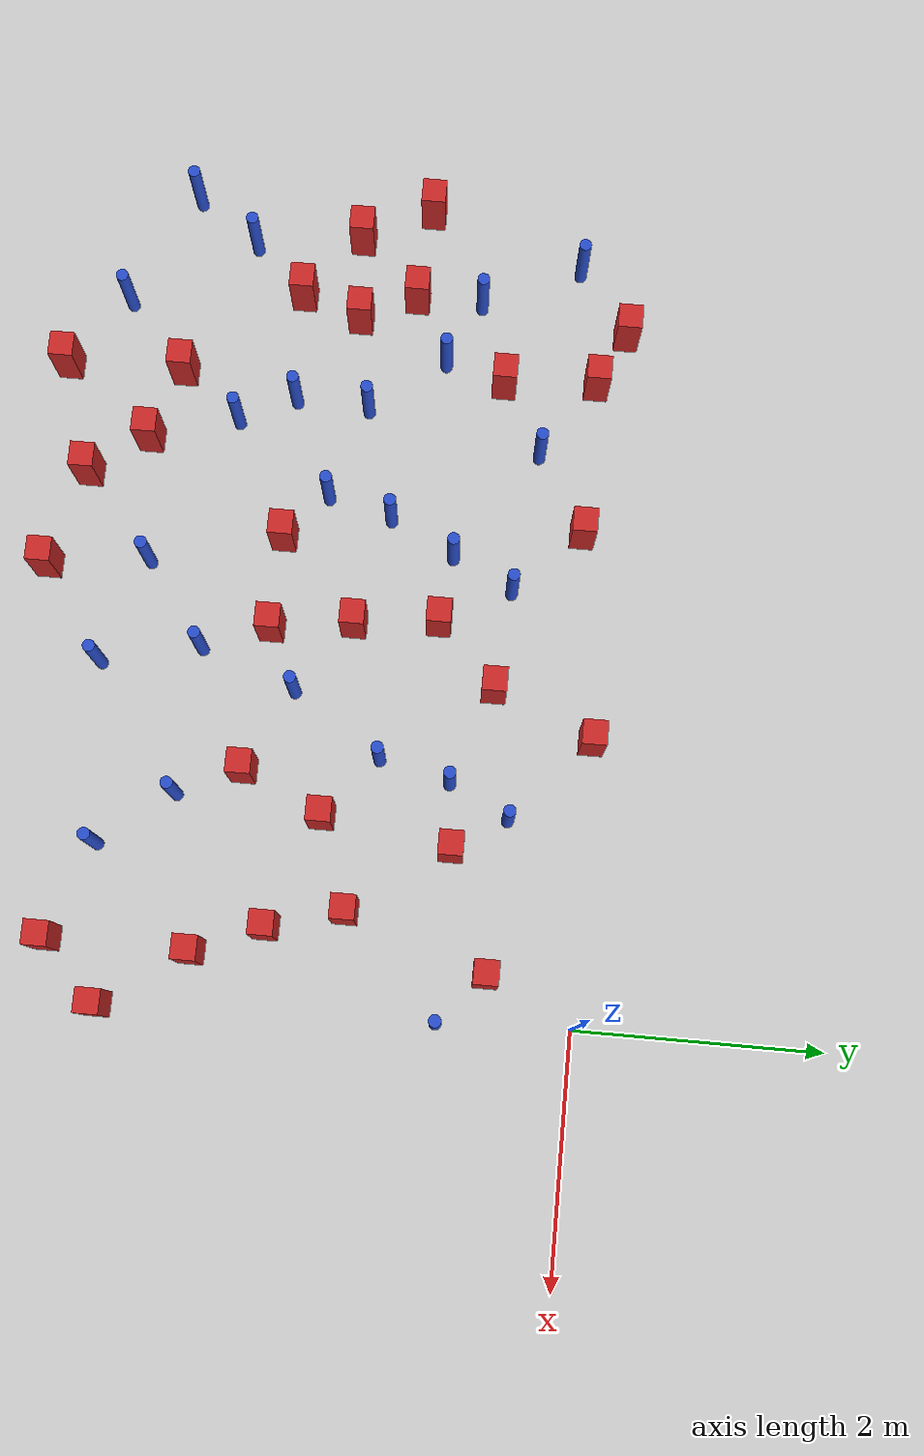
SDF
<sdf version="1.6">
 <world name="default">
  <model name="ground_plane">
   <static>1</static>
   <link name="link">
    <collision name="collision">
     <geometry><plane><normal>0 0 1</normal><size>100 100</size></plane></geometry>
     <surface><friction><ode><mu>100</mu><mu2>50</mu2></ode></friction></surface>
    </collision>
    <visual name="visual">
     <cast_shadows>0</cast_shadows>
     <geometry><plane><normal>0 0 1</normal><size>100 100</size></plane></geometry>
     <material>
      <ambient>1.0 1.0 1.0 1.0</ambient>
      <diffuse>0.8 0.8 0.8 1.0</diffuse>
      <specular>0.01 0.01 0.01 1.000000</specular>
     </material>
    </visual>
   </link>
  </model>
  <model name="NamedLocations">
   <static>true</static>
   <link name="DefaultStart"><pose>8.5 0 0 0 0 3.14</pose></link>
  </model>
  <model name="pole_obstacle14">
   <static>true</static>
   <pose>-1.5881915695 -3.29287273544 7.38925637345e-09 -8.47170692799e-08 1.24976765053e-08 -1.74513093017e-07</pose>
   <link name="link">
    <pose>0 0 0.3 0 -0 0</pose>
    <inertial>
     <mass>1</mass>
     <inertia><ixx>0.145833</ixx><ixy>0</ixy><ixz>0</ixz><iyy>0.145833</iyy><iyz>0</iyz><izz>0.125</izz></inertia>
    </inertial>
    <collision name="collision">
     <geometry><cylinder><radius>0.05</radius><length>.6</length></cylinder></geometry>
    </collision>
    <visual name="visual">
     <geometry><cylinder><radius>0.05</radius><length>.6</length></cylinder></geometry>
     <material>
      <script><name>Gazebo/Blue</name><uri>file://media/materials/scripts/gazebo.material</uri></script>
     </material>
    </visual>
   </link>
  </model>
  <model name="pole_obstacle24">
   <static>true</static>
   <pose>-5.98592956495 -1.19869225586 7.38925637345e-09 -8.471706928e-08 1.24976765134e-08 -1.74513093015e-07</pose>
   <link name="link">
    <pose>0 0 0.3 0 -0 0</pose>
    <inertial>
     <mass>1</mass>
     <inertia><ixx>0.145833</ixx><ixy>0</ixy><ixz>0</ixz><iyy>0.145833</iyy><iyz>0</iyz><izz>0.125</izz></inertia>
    </inertial>
    <collision name="collision">
     <geometry><cylinder><radius>0.05</radius><length>.6</length></cylinder></geometry>
    </collision>
    <visual name="visual">
     <geometry><cylinder><radius>0.05</radius><length>.6</length></cylinder></geometry>
     <material>
      <script><name>Gazebo/Blue</name><uri>file://media/materials/scripts/gazebo.material</uri></script>
     </material>
    </visual>
   </link>
  </model>
  <model name="pole_obstacle32">
   <static>true</static>
   <pose>-3.4949937972 -0.745836086212 7.38925637345e-09 -8.47170692796e-08 1.24976764768e-08 -1.74513093035e-07</pose>
   <link name="link">
    <pose>0 0 0.3 0 -0 0</pose>
    <inertial>
     <mass>1</mass>
     <inertia><ixx>0.145833</ixx><ixy>0</ixy><ixz>0</ixz><iyy>0.145833</iyy><iyz>0</iyz><izz>0.125</izz></inertia>
    </inertial>
    <collision name="collision">
     <geometry><cylinder><radius>0.05</radius><length>.6</length></cylinder></geometry>
    </collision>
    <visual name="visual">
     <geometry><cylinder><radius>0.05</radius><length>.6</length></cylinder></geometry>
     <material>
      <script><name>Gazebo/Blue</name><uri>file://media/materials/scripts/gazebo.material</uri></script>
     </material>
    </visual>
   </link>
  </model>
  <model name="square_post_obstacle32">
   <static>true</static>
   <pose>-0.764394265604 -1.846053875 1.91545236811e-07 -7.35059704564e-06 1.12565212e-07 2.39332434364e-05</pose>
   <link name="link">
    <pose>0 0 0.25 0 -0 0</pose>
    <inertial>
     <mass>100</mass>
     <inertia>
      <ixx>0.166667</ixx>
      <ixy>0</ixy>
      <ixz>0</ixz>
      <iyy>0.166667</iyy>
      <iyz>0</iyz>
      <izz>0.166667</izz>
     </inertia>
    </inertial>
    <collision name="collision"><geometry><box><size>.2 .2 .5</size></box></geometry></collision>
    <visual name="visual">
     <geometry><box><size>.2 .2 .5</size></box></geometry>
     <material>
      <script><name>Gazebo/Red</name><uri>file://media/materials/scripts/gazebo.material</uri></script>
     </material>
    </visual>
   </link>
  </model>
  <model name="pole_obstacle43">
   <static>true</static>
   <pose>-4.97013746226 -2.06566081198 7.38925637345e-09 -8.47170692798e-08 1.24976764937e-08 -1.74513093023e-07</pose>
   <link name="link">
    <pose>0 0 0.3 0 -0 0</pose>
    <inertial>
     <mass>1</mass>
     <inertia><ixx>0.145833</ixx><ixy>0</ixy><ixz>0</ixz><iyy>0.145833</iyy><iyz>0</iyz><izz>0.125</izz></inertia>
    </inertial>
    <collision name="collision">
     <geometry><cylinder><radius>0.05</radius><length>.6</length></cylinder></geometry>
    </collision>
    <visual name="visual">
     <geometry><cylinder><radius>0.05</radius><length>.6</length></cylinder></geometry>
     <material>
      <script><name>Gazebo/Blue</name><uri>file://media/materials/scripts/gazebo.material</uri></script>
     </material>
    </visual>
   </link>
  </model>
  <model name="pole_obstacle47">
   <static>true</static>
   <pose>-5.75767897718 -4.16043996899 7.38925637345e-09 -8.47170692796e-08 1.24976764786e-08 -1.74513093032e-07</pose>
   <link name="link">
    <pose>0 0 0.3 0 -0 0</pose>
    <inertial>
     <mass>1</mass>
     <inertia><ixx>0.145833</ixx><ixy>0</ixy><ixz>0</ixz><iyy>0.145833</iyy><iyz>0</iyz><izz>0.125</izz></inertia>
    </inertial>
    <collision name="collision">
     <geometry><cylinder><radius>0.05</radius><length>.6</length></cylinder></geometry>
    </collision>
    <visual name="visual">
     <geometry><cylinder><radius>0.05</radius><length>.6</length></cylinder></geometry>
     <material>
      <script><name>Gazebo/Blue</name><uri>file://media/materials/scripts/gazebo.material</uri></script>
     </material>
    </visual>
   </link>
  </model>
  <model name="square_post_obstacle37">
   <static>true</static>
   <pose>-6.49922246051 -2.25728765322 1.91545236811e-07 -7.35059704564e-06 1.12565212e-07 2.39332434364e-05</pose>
   <link name="link">
    <pose>0 0 0.25 0 -0 0</pose>
    <inertial>
     <mass>100</mass>
     <inertia>
      <ixx>0.166667</ixx>
      <ixy>0</ixy>
      <ixz>0</ixz>
      <iyy>0.166667</iyy>
      <iyz>0</iyz>
      <izz>0.166667</izz>
     </inertia>
    </inertial>
    <collision name="collision"><geometry><box><size>.2 .2 .5</size></box></geometry></collision>
    <visual name="visual">
     <geometry><box><size>.2 .2 .5</size></box></geometry>
     <material>
      <script><name>Gazebo/Red</name><uri>file://media/materials/scripts/gazebo.material</uri></script>
     </material>
    </visual>
   </link>
  </model>
  <model name="square_post_obstacle40">
   <static>true</static>
   <pose>-0.346351885317 -3.02590306915 1.91545236811e-07 -7.35059704564e-06 1.12565212e-07 2.39332434364e-05</pose>
   <link name="link">
    <pose>0 0 0.25 0 -0 0</pose>
    <inertial>
     <mass>100</mass>
     <inertia>
      <ixx>0.166667</ixx>
      <ixy>0</ixy>
      <ixz>0</ixz>
      <iyy>0.166667</iyy>
      <iyz>0</iyz>
      <izz>0.166667</izz>
     </inertia>
    </inertial>
    <collision name="collision"><geometry><box><size>.2 .2 .5</size></box></geometry></collision>
    <visual name="visual">
     <geometry><box><size>.2 .2 .5</size></box></geometry>
     <material>
      <script><name>Gazebo/Red</name><uri>file://media/materials/scripts/gazebo.material</uri></script>
     </material>
    </visual>
   </link>
  </model>
  <model name="pole_obstacle59">
   <static>true</static>
   <pose>-3.74900423544 -1.24891787536 7.38925637345e-09 -8.471706928e-08 1.24976765152e-08 -1.74513093012e-07</pose>
   <link name="link">
    <pose>0 0 0.3 0 -0 0</pose>
    <inertial>
     <mass>1</mass>
     <inertia><ixx>0.145833</ixx><ixy>0</ixy><ixz>0</ixz><iyy>0.145833</iyy><iyz>0</iyz><izz>0.125</izz></inertia>
    </inertial>
    <collision name="collision">
     <geometry><cylinder><radius>0.05</radius><length>.6</length></cylinder></geometry>
    </collision>
    <visual name="visual">
     <geometry><cylinder><radius>0.05</radius><length>.6</length></cylinder></geometry>
     <material>
      <script><name>Gazebo/Blue</name><uri>file://media/materials/scripts/gazebo.material</uri></script>
     </material>
    </visual>
   </link>
  </model>
  <model name="pole_obstacle67">
   <static>true</static>
   <pose>-2.50916852605 -2.43183906819 7.38925637345e-09 -8.47170692798e-08 1.24976764939e-08 -1.74513093025e-07</pose>
   <link name="link">
    <pose>0 0 0.3 0 -0 0</pose>
    <inertial>
     <mass>1</mass>
     <inertia><ixx>0.145833</ixx><ixy>0</ixy><ixz>0</ixz><iyy>0.145833</iyy><iyz>0</iyz><izz>0.125</izz></inertia>
    </inertial>
    <collision name="collision">
     <geometry><cylinder><radius>0.05</radius><length>.6</length></cylinder></geometry>
    </collision>
    <visual name="visual">
     <geometry><cylinder><radius>0.05</radius><length>.6</length></cylinder></geometry>
     <material>
      <script><name>Gazebo/Blue</name><uri>file://media/materials/scripts/gazebo.material</uri></script>
     </material>
    </visual>
   </link>
  </model>
  <model name="pole_obstacle68">
   <static>true</static>
   <pose>-2.80132080904 -3.22147146962 7.38925637345e-09 -8.47170692798e-08 1.24976764939e-08 -1.74513093025e-07</pose>
   <link name="link">
    <pose>0 0 0.3 0 -0 0</pose>
    <inertial>
     <mass>1</mass>
     <inertia><ixx>0.145833</ixx><ixy>0</ixy><ixz>0</ixz><iyy>0.145833</iyy><iyz>0</iyz><izz>0.125</izz></inertia>
    </inertial>
    <collision name="collision">
     <geometry><cylinder><radius>0.05</radius><length>.6</length></cylinder></geometry>
    </collision>
    <visual name="visual">
     <geometry><cylinder><radius>0.05</radius><length>.6</length></cylinder></geometry>
     <material>
      <script><name>Gazebo/Blue</name><uri>file://media/materials/scripts/gazebo.material</uri></script>
     </material>
    </visual>
   </link>
  </model>
  <model name="pole_obstacle82">
   <static>true</static>
   <pose>-1.13411958968 -3.87998792143 7.38925637345e-09 -8.47170692799e-08 1.24976765053e-08 -1.74513093017e-07</pose>
   <link name="link">
    <pose>0 0 0.3 0 -0 0</pose>
    <inertial>
     <mass>1</mass>
     <inertia><ixx>0.145833</ixx><ixy>0</ixy><ixz>0</ixz><iyy>0.145833</iyy><iyz>0</iyz><izz>0.125</izz></inertia>
    </inertial>
    <collision name="collision">
     <geometry><cylinder><radius>0.05</radius><length>.6</length></cylinder></geometry>
    </collision>
    <visual name="visual">
     <geometry><cylinder><radius>0.05</radius><length>.6</length></cylinder></geometry>
     <material>
      <script><name>Gazebo/Blue</name><uri>file://media/materials/scripts/gazebo.material</uri></script>
     </material>
    </visual>
   </link>
  </model>
  <model name="pole_obstacle85">
   <static>true</static>
   <pose>-1.60331715183 -0.623560210854 7.38925637345e-09 -8.47170692799e-08 1.24976765075e-08 -1.74513093017e-07</pose>
   <link name="link">
    <pose>0 0 0.3 0 -0 0</pose>
    <inertial>
     <mass>1</mass>
     <inertia><ixx>0.145833</ixx><ixy>0</ixy><ixz>0</ixz><iyy>0.145833</iyy><iyz>0</iyz><izz>0.125</izz></inertia>
    </inertial>
    <collision name="collision">
     <geometry><cylinder><radius>0.05</radius><length>.6</length></cylinder></geometry>
    </collision>
    <visual name="visual">
     <geometry><cylinder><radius>0.05</radius><length>.6</length></cylinder></geometry>
     <material>
      <script><name>Gazebo/Blue</name><uri>file://media/materials/scripts/gazebo.material</uri></script>
     </material>
    </visual>
   </link>
  </model>
  <model name="pole_obstacle86">
   <static>true</static>
   <pose>-5.43969992867 -1.45553213279 7.38925637345e-09 -8.471706928e-08 1.24976765134e-08 -1.74513093015e-07</pose>
   <link name="link">
    <pose>0 0 0.3 0 -0 0</pose>
    <inertial>
     <mass>1</mass>
     <inertia><ixx>0.145833</ixx><ixy>0</ixy><ixz>0</ixz><iyy>0.145833</iyy><iyz>0</iyz><izz>0.125</izz></inertia>
    </inertial>
    <collision name="collision">
     <geometry><cylinder><radius>0.05</radius><length>.6</length></cylinder></geometry>
    </collision>
    <visual name="visual">
     <geometry><cylinder><radius>0.05</radius><length>.6</length></cylinder></geometry>
     <material>
      <script><name>Gazebo/Blue</name><uri>file://media/materials/scripts/gazebo.material</uri></script>
     </material>
    </visual>
   </link>
  </model>
  <model name="square_post_obstacle78">
   <static>true</static>
   <pose>-5.35152610486 -0.185492943261 1.91545236811e-07 -7.35059704564e-06 1.12565212e-07 2.39332434364e-05</pose>
   <link name="link">
    <pose>0 0 0.25 0 -0 0</pose>
    <inertial>
     <mass>100</mass>
     <inertia>
      <ixx>0.166667</ixx>
      <ixy>0</ixy>
      <ixz>0</ixz>
      <iyy>0.166667</iyy>
      <iyz>0</iyz>
      <izz>0.166667</izz>
     </inertia>
    </inertial>
    <collision name="collision"><geometry><box><size>.2 .2 .5</size></box></geometry></collision>
    <visual name="visual">
     <geometry><box><size>.2 .2 .5</size></box></geometry>
     <material>
      <script><name>Gazebo/Red</name><uri>file://media/materials/scripts/gazebo.material</uri></script>
     </material>
    </visual>
   </link>
  </model>
  <model name="square_post_obstacle79">
   <static>true</static>
   <pose>-2.3026909301 -0.00418137206174 1.91545236811e-07 -7.35059704564e-06 1.12565212e-07 2.39332434364e-05</pose>
   <link name="link">
    <pose>0 0 0.25 0 -0 0</pose>
    <inertial>
     <mass>100</mass>
     <inertia>
      <ixx>0.166667</ixx>
      <ixy>0</ixy>
      <ixz>0</ixz>
      <iyy>0.166667</iyy>
      <iyz>0</iyz>
      <izz>0.166667</izz>
     </inertia>
    </inertial>
    <collision name="collision"><geometry><box><size>.2 .2 .5</size></box></geometry></collision>
    <visual name="visual">
     <geometry><box><size>.2 .2 .5</size></box></geometry>
     <material>
      <script><name>Gazebo/Red</name><uri>file://media/materials/scripts/gazebo.material</uri></script>
     </material>
    </visual>
   </link>
  </model>
  <model name="square_post_obstacle83">
   <static>true</static>
   <pose>-5.77486883097 -2.20817674534 1.91545236811e-07 -7.35059704564e-06 1.12565212e-07 2.39332434364e-05</pose>
   <link name="link">
    <pose>0 0 0.25 0 -0 0</pose>
    <inertial>
     <mass>100</mass>
     <inertia>
      <ixx>0.166667</ixx>
      <ixy>0</ixy>
      <ixz>0</ixz>
      <iyy>0.166667</iyy>
      <iyz>0</iyz>
      <izz>0.166667</izz>
     </inertia>
    </inertial>
    <collision name="collision"><geometry><box><size>.2 .2 .5</size></box></geometry></collision>
    <visual name="visual">
     <geometry><box><size>.2 .2 .5</size></box></geometry>
     <material>
      <script><name>Gazebo/Red</name><uri>file://media/materials/scripts/gazebo.material</uri></script>
     </material>
    </visual>
   </link>
  </model>
  <model name="pole_obstacle94">
   <static>true</static>
   <pose>-3.50139744922 -3.73138607107 7.38925637345e-09 -8.47170692798e-08 1.24976764939e-08 -1.74513093025e-07</pose>
   <link name="link">
    <pose>0 0 0.3 0 -0 0</pose>
    <inertial>
     <mass>1</mass>
     <inertia><ixx>0.145833</ixx><ixy>0</ixy><ixz>0</ixz><iyy>0.145833</iyy><iyz>0</iyz><izz>0.125</izz></inertia>
    </inertial>
    <collision name="collision">
     <geometry><cylinder><radius>0.05</radius><length>.6</length></cylinder></geometry>
    </collision>
    <visual name="visual">
     <geometry><cylinder><radius>0.05</radius><length>.6</length></cylinder></geometry>
     <material>
      <script><name>Gazebo/Blue</name><uri>file://media/materials/scripts/gazebo.material</uri></script>
     </material>
    </visual>
   </link>
  </model>
  <model name="pole_obstacle100">
   <static>true</static>
   <pose>-2.00901056313 -1.69233663513 7.38925637345e-09 -8.47170692799e-08 1.24976764992e-08 -1.74513093021e-07</pose>
   <link name="link">
    <pose>0 0 0.3 0 -0 0</pose>
    <inertial>
     <mass>1</mass>
     <inertia><ixx>0.145833</ixx><ixy>0</ixy><ixz>0</ixz><iyy>0.145833</iyy><iyz>0</iyz><izz>0.125</izz></inertia>
    </inertial>
    <collision name="collision">
     <geometry><cylinder><radius>0.05</radius><length>.6</length></cylinder></geometry>
    </collision>
    <visual name="visual">
     <geometry><cylinder><radius>0.05</radius><length>.6</length></cylinder></geometry>
     <material>
      <script><name>Gazebo/Blue</name><uri>file://media/materials/scripts/gazebo.material</uri></script>
     </material>
    </visual>
   </link>
  </model>
  <model name="square_post_obstacle93">
   <static>true</static>
   <pose>-5.16206569986 -4.60998757641 1.91545236811e-07 -7.35059704564e-06 1.12565212e-07 2.39332434364e-05</pose>
   <link name="link">
    <pose>0 0 0.25 0 -0 0</pose>
    <inertial>
     <mass>100</mass>
     <inertia>
      <ixx>0.166667</ixx>
      <ixy>0</ixy>
      <ixz>0</ixz>
      <iyy>0.166667</iyy>
      <iyz>0</iyz>
      <izz>0.166667</izz>
     </inertia>
    </inertial>
    <collision name="collision"><geometry><box><size>.2 .2 .5</size></box></geometry></collision>
    <visual name="visual">
     <geometry><box><size>.2 .2 .5</size></box></geometry>
     <material>
      <script><name>Gazebo/Red</name><uri>file://media/materials/scripts/gazebo.material</uri></script>
     </material>
    </visual>
   </link>
  </model>
  <model name="square_post_obstacle98">
   <static>true</static>
   <pose>-2.66475707912 -0.823517044001 1.91545236811e-07 -7.35059704564e-06 1.12565212e-07 2.39332434364e-05</pose>
   <link name="link">
    <pose>0 0 0.25 0 -0 0</pose>
    <inertial>
     <mass>100</mass>
     <inertia>
      <ixx>0.166667</ixx>
      <ixy>0</ixy>
      <ixz>0</ixz>
      <iyy>0.166667</iyy>
      <iyz>0</iyz>
      <izz>0.166667</izz>
     </inertia>
    </inertial>
    <collision name="collision"><geometry><box><size>.2 .2 .5</size></box></geometry></collision>
    <visual name="visual">
     <geometry><box><size>.2 .2 .5</size></box></geometry>
     <material>
      <script><name>Gazebo/Red</name><uri>file://media/materials/scripts/gazebo.material</uri></script>
     </material>
    </visual>
   </link>
  </model>
  <model name="square_post_obstacle110">
   <static>true</static>
   <pose>-1.33381516567 -1.05491271503 1.91545236811e-07 -7.35059704564e-06 1.12565212e-07 2.39332434364e-05</pose>
   <link name="link">
    <pose>0 0 0.25 0 -0 0</pose>
    <inertial>
     <mass>100</mass>
     <inertia>
      <ixx>0.166667</ixx>
      <ixy>0</ixy>
      <ixz>0</ixz>
      <iyy>0.166667</iyy>
      <iyz>0</iyz>
      <izz>0.166667</izz>
     </inertia>
    </inertial>
    <collision name="collision"><geometry><box><size>.2 .2 .5</size></box></geometry></collision>
    <visual name="visual">
     <geometry><box><size>.2 .2 .5</size></box></geometry>
     <material>
      <script><name>Gazebo/Red</name><uri>file://media/materials/scripts/gazebo.material</uri></script>
     </material>
    </visual>
   </link>
  </model>
  <model name="pole_obstacle115">
   <static>true</static>
   <pose>-4.69217194966 -0.612088554686 7.38925637345e-09 -8.47170692799e-08 1.24976765038e-08 -1.74513093018e-07</pose>
   <link name="link">
    <pose>0 0 0.3 0 -0 0</pose>
    <inertial>
     <mass>1</mass>
     <inertia><ixx>0.145833</ixx><ixy>0</ixy><ixz>0</ixz><iyy>0.145833</iyy><iyz>0</iyz><izz>0.125</izz></inertia>
    </inertial>
    <collision name="collision">
     <geometry><cylinder><radius>0.05</radius><length>.6</length></cylinder></geometry>
    </collision>
    <visual name="visual">
     <geometry><cylinder><radius>0.05</radius><length>.6</length></cylinder></geometry>
     <material>
      <script><name>Gazebo/Blue</name><uri>file://media/materials/scripts/gazebo.material</uri></script>
     </material>
    </visual>
   </link>
  </model>
  <model name="pole_obstacle117">
   <static>true</static>
   <pose>-4.77784698474 -3.13714139402 7.38925637345e-09 -8.47170692798e-08 1.24976764937e-08 -1.74513093023e-07</pose>
   <link name="link">
    <pose>0 0 0.3 0 -0 0</pose>
    <inertial>
     <mass>1</mass>
     <inertia><ixx>0.145833</ixx><ixy>0</ixy><ixz>0</ixz><iyy>0.145833</iyy><iyz>0</iyz><izz>0.125</izz></inertia>
    </inertial>
    <collision name="collision">
     <geometry><cylinder><radius>0.05</radius><length>.6</length></cylinder></geometry>
    </collision>
    <visual name="visual">
     <geometry><cylinder><radius>0.05</radius><length>.6</length></cylinder></geometry>
     <material>
      <script><name>Gazebo/Blue</name><uri>file://media/materials/scripts/gazebo.material</uri></script>
     </material>
    </visual>
   </link>
  </model>
  <model name="pole_obstacle118">
   <static>true</static>
   <pose>-5.00179205696 -2.67442814389 7.38925637345e-09 -8.47170692798e-08 1.24976764937e-08 -1.74513093023e-07</pose>
   <link name="link">
    <pose>0 0 0.3 0 -0 0</pose>
    <inertial>
     <mass>1</mass>
     <inertia><ixx>0.145833</ixx><ixy>0</ixy><ixz>0</ixz><iyy>0.145833</iyy><iyz>0</iyz><izz>0.125</izz></inertia>
    </inertial>
    <collision name="collision">
     <geometry><cylinder><radius>0.05</radius><length>.6</length></cylinder></geometry>
    </collision>
    <visual name="visual">
     <geometry><cylinder><radius>0.05</radius><length>.6</length></cylinder></geometry>
     <material>
      <script><name>Gazebo/Blue</name><uri>file://media/materials/scripts/gazebo.material</uri></script>
     </material>
    </visual>
   </link>
  </model>
  <model name="square_post_obstacle120">
   <static>true</static>
   <pose>-4.22864776103 -4.32253548515 1.91545236811e-07 -7.35059704564e-06 1.12565212e-07 2.39332434364e-05</pose>
   <link name="link">
    <pose>0 0 0.25 0 -0 0</pose>
    <inertial>
     <mass>100</mass>
     <inertia>
      <ixx>0.166667</ixx>
      <ixy>0</ixy>
      <ixz>0</ixz>
      <iyy>0.166667</iyy>
      <iyz>0</iyz>
      <izz>0.166667</izz>
     </inertia>
    </inertial>
    <collision name="collision"><geometry><box><size>.2 .2 .5</size></box></geometry></collision>
    <visual name="visual">
     <geometry><box><size>.2 .2 .5</size></box></geometry>
     <material>
      <script><name>Gazebo/Red</name><uri>file://media/materials/scripts/gazebo.material</uri></script>
     </material>
    </visual>
   </link>
  </model>
  <model name="pole_obstacle120">
   <static>true</static>
   <pose>-2.61902228808 -4.03261557674 7.38925637345e-09 -8.47170692799e-08 1.24976764995e-08 -1.74513093021e-07</pose>
   <link name="link">
    <pose>0 0 0.3 0 -0 0</pose>
    <inertial>
     <mass>1</mass>
     <inertia><ixx>0.145833</ixx><ixy>0</ixy><ixz>0</ixz><iyy>0.145833</iyy><iyz>0</iyz><izz>0.125</izz></inertia>
    </inertial>
    <collision name="collision">
     <geometry><cylinder><radius>0.05</radius><length>.6</length></cylinder></geometry>
    </collision>
    <visual name="visual">
     <geometry><cylinder><radius>0.05</radius><length>.6</length></cylinder></geometry>
     <material>
      <script><name>Gazebo/Blue</name><uri>file://media/materials/scripts/gazebo.material</uri></script>
     </material>
    </visual>
   </link>
  </model>
  <model name="square_post_obstacle121">
   <static>true</static>
   <pose>-4.03924820685 -0.206231627485 1.91545236811e-07 -7.35059704564e-06 1.12565212e-07 2.39332434364e-05</pose>
   <link name="link">
    <pose>0 0 0.25 0 -0 0</pose>
    <inertial>
     <mass>100</mass>
     <inertia>
      <ixx>0.166667</ixx>
      <ixy>0</ixy>
      <ixz>0</ixz>
      <iyy>0.166667</iyy>
      <iyz>0</iyz>
      <izz>0.166667</izz>
     </inertia>
    </inertial>
    <collision name="collision"><geometry><box><size>.2 .2 .5</size></box></geometry></collision>
    <visual name="visual">
     <geometry><box><size>.2 .2 .5</size></box></geometry>
     <material>
      <script><name>Gazebo/Red</name><uri>file://media/materials/scripts/gazebo.material</uri></script>
     </material>
    </visual>
   </link>
  </model>
  <model name="pole_obstacle122">
   <static>true</static>
   <pose>-6.35977095981 -3.15354793054 7.38925637345e-09 -8.47170692798e-08 1.24976764937e-08 -1.74513093023e-07</pose>
   <link name="link">
    <pose>0 0 0.3 0 -0 0</pose>
    <inertial>
     <mass>1</mass>
     <inertia><ixx>0.145833</ixx><ixy>0</ixy><ixz>0</ixz><iyy>0.145833</iyy><iyz>0</iyz><izz>0.125</izz></inertia>
    </inertial>
    <collision name="collision">
     <geometry><cylinder><radius>0.05</radius><length>.6</length></cylinder></geometry>
    </collision>
    <visual name="visual">
     <geometry><cylinder><radius>0.05</radius><length>.6</length></cylinder></geometry>
     <material>
      <script><name>Gazebo/Blue</name><uri>file://media/materials/scripts/gazebo.material</uri></script>
     </material>
    </visual>
   </link>
  </model>
  <model name="pole_obstacle125">
   <static>true</static>
   <pose>-6.73385839094 -3.68124467891 7.38925637345e-09 -8.47170692798e-08 1.24976764937e-08 -1.74513093023e-07</pose>
   <link name="link">
    <pose>0 0 0.3 0 -0 0</pose>
    <inertial>
     <mass>1</mass>
     <inertia><ixx>0.145833</ixx><ixy>0</ixy><ixz>0</ixz><iyy>0.145833</iyy><iyz>0</iyz><izz>0.125</izz></inertia>
    </inertial>
    <collision name="collision">
     <geometry><cylinder><radius>0.05</radius><length>.6</length></cylinder></geometry>
    </collision>
    <visual name="visual">
     <geometry><cylinder><radius>0.05</radius><length>.6</length></cylinder></geometry>
     <material>
      <script><name>Gazebo/Blue</name><uri>file://media/materials/scripts/gazebo.material</uri></script>
     </material>
    </visual>
   </link>
  </model>
  <model name="square_post_obstacle126">
   <static>true</static>
   <pose>-3.02182058873 -2.67408507888 1.91545236811e-07 -7.35059704564e-06 1.12565212e-07 2.39332434364e-05</pose>
   <link name="link">
    <pose>0 0 0.25 0 -0 0</pose>
    <inertial>
     <mass>100</mass>
     <inertia>
      <ixx>0.166667</ixx>
      <ixy>0</ixy>
      <ixz>0</ixz>
      <iyy>0.166667</iyy>
      <iyz>0</iyz>
      <izz>0.166667</izz>
     </inertia>
    </inertial>
    <collision name="collision"><geometry><box><size>.2 .2 .5</size></box></geometry></collision>
    <visual name="visual">
     <geometry><box><size>.2 .2 .5</size></box></geometry>
     <material>
      <script><name>Gazebo/Red</name><uri>file://media/materials/scripts/gazebo.material</uri></script>
     </material>
    </visual>
   </link>
  </model>
  <model name="square_post_obstacle130">
   <static>true</static>
   <pose>-0.360721752497 -0.696999065127 1.91545236811e-07 -7.35059704564e-06 1.12565212e-07 2.39332434364e-05</pose>
   <link name="link">
    <pose>0 0 0.25 0 -0 0</pose>
    <inertial>
     <mass>100</mass>
     <inertia>
      <ixx>0.166667</ixx>
      <ixy>0</ixy>
      <ixz>0</ixz>
      <iyy>0.166667</iyy>
      <iyz>0</iyz>
      <izz>0.166667</izz>
     </inertia>
    </inertial>
    <collision name="collision"><geometry><box><size>.2 .2 .5</size></box></geometry></collision>
    <visual name="visual">
     <geometry><box><size>.2 .2 .5</size></box></geometry>
     <material>
      <script><name>Gazebo/Red</name><uri>file://media/materials/scripts/gazebo.material</uri></script>
     </material>
    </visual>
   </link>
  </model>
  <model name="square_post_obstacle131">
   <static>true</static>
   <pose>-4.56903354025 -3.85261728733 1.91545236811e-07 -7.35059704564e-06 1.12565212e-07 2.39332434364e-05</pose>
   <link name="link">
    <pose>0 0 0.25 0 -0 0</pose>
    <inertial>
     <mass>100</mass>
     <inertia>
      <ixx>0.166667</ixx>
      <ixy>0</ixy>
      <ixz>0</ixz>
      <iyy>0.166667</iyy>
      <iyz>0</iyz>
      <izz>0.166667</izz>
     </inertia>
    </inertial>
    <collision name="collision"><geometry><box><size>.2 .2 .5</size></box></geometry></collision>
    <visual name="visual">
     <geometry><box><size>.2 .2 .5</size></box></geometry>
     <material>
      <script><name>Gazebo/Red</name><uri>file://media/materials/scripts/gazebo.material</uri></script>
     </material>
    </visual>
   </link>
  </model>
  <model name="square_post_obstacle132">
   <static>true</static>
   <pose>-3.40847456058 -4.56295934992 1.91545236811e-07 -7.35059704564e-06 1.12565212e-07 2.39332434364e-05</pose>
   <link name="link">
    <pose>0 0 0.25 0 -0 0</pose>
    <inertial>
     <mass>100</mass>
     <inertia>
      <ixx>0.166667</ixx>
      <ixy>0</ixy>
      <ixz>0</ixz>
      <iyy>0.166667</iyy>
      <iyz>0</iyz>
      <izz>0.166667</izz>
     </inertia>
    </inertial>
    <collision name="collision"><geometry><box><size>.2 .2 .5</size></box></geometry></collision>
    <visual name="visual">
     <geometry><box><size>.2 .2 .5</size></box></geometry>
     <material>
      <script><name>Gazebo/Red</name><uri>file://media/materials/scripts/gazebo.material</uri></script>
     </material>
    </visual>
   </link>
  </model>
  <model name="square_post_obstacle136">
   <static>true</static>
   <pose>-3.80188056488 -2.65245094424 1.91545236811e-07 -7.35059704564e-06 1.12565212e-07 2.39332434364e-05</pose>
   <link name="link">
    <pose>0 0 0.25 0 -0 0</pose>
    <inertial>
     <mass>100</mass>
     <inertia>
      <ixx>0.166667</ixx>
      <ixy>0</ixy>
      <ixz>0</ixz>
      <iyy>0.166667</iyy>
      <iyz>0</iyz>
      <izz>0.166667</izz>
     </inertia>
    </inertial>
    <collision name="collision"><geometry><box><size>.2 .2 .5</size></box></geometry></collision>
    <visual name="visual">
     <geometry><box><size>.2 .2 .5</size></box></geometry>
     <material>
      <script><name>Gazebo/Red</name><uri>file://media/materials/scripts/gazebo.material</uri></script>
     </material>
    </visual>
   </link>
  </model>
  <model name="square_post_obstacle137">
   <static>true</static>
   <pose>-0.355244609463 -4.17672277257 1.91545236811e-07 -7.35059704564e-06 1.12565212e-07 2.39332434364e-05</pose>
   <link name="link">
    <pose>0 0 0.25 0 -0 0</pose>
    <inertial>
     <mass>100</mass>
     <inertia>
      <ixx>0.166667</ixx>
      <ixy>0</ixy>
      <ixz>0</ixz>
      <iyy>0.166667</iyy>
      <iyz>0</iyz>
      <izz>0.166667</izz>
     </inertia>
    </inertial>
    <collision name="collision"><geometry><box><size>.2 .2 .5</size></box></geometry></collision>
    <visual name="visual">
     <geometry><box><size>.2 .2 .5</size></box></geometry>
     <material>
      <script><name>Gazebo/Red</name><uri>file://media/materials/scripts/gazebo.material</uri></script>
     </material>
    </visual>
   </link>
  </model>
  <model name="pole_obstacle143">
   <static>true</static>
   <pose>0.0448626184064 -1.05743054151 7.38925637345e-09 -8.47170692798e-08 1.24976765001e-08 -1.74513093021e-07</pose>
   <link name="link">
    <pose>0 0 0.3 0 -0 0</pose>
    <inertial>
     <mass>1</mass>
     <inertia><ixx>0.145833</ixx><ixy>0</ixy><ixz>0</ixz><iyy>0.145833</iyy><iyz>0</iyz><izz>0.125</izz></inertia>
    </inertial>
    <collision name="collision">
     <geometry><cylinder><radius>0.05</radius><length>.6</length></cylinder></geometry>
    </collision>
    <visual name="visual">
     <geometry><cylinder><radius>0.05</radius><length>.6</length></cylinder></geometry>
     <material>
      <script><name>Gazebo/Blue</name><uri>file://media/materials/scripts/gazebo.material</uri></script>
     </material>
    </visual>
   </link>
  </model>
  <model name="square_post_obstacle146">
   <static>true</static>
   <pose>-5.81861949652 0.0351715261057 1.91545236811e-07 -7.35059704564e-06 1.12565212e-07 2.39332434364e-05</pose>
   <link name="link">
    <pose>0 0 0.25 0 -0 0</pose>
    <inertial>
     <mass>100</mass>
     <inertia>
      <ixx>0.166667</ixx>
      <ixy>0</ixy>
      <ixz>0</ixz>
      <iyy>0.166667</iyy>
      <iyz>0</iyz>
      <izz>0.166667</izz>
     </inertia>
    </inertial>
    <collision name="collision"><geometry><box><size>.2 .2 .5</size></box></geometry></collision>
    <visual name="visual">
     <geometry><box><size>.2 .2 .5</size></box></geometry>
     <material>
      <script><name>Gazebo/Red</name><uri>file://media/materials/scripts/gazebo.material</uri></script>
     </material>
    </visual>
   </link>
  </model>
  <model name="square_post_obstacle151">
   <static>true</static>
   <pose>0.12396632998 -3.71464014014 1.91545236811e-07 -7.35059704564e-06 1.12565212e-07 2.39332434364e-05</pose>
   <link name="link">
    <pose>0 0 0.25 0 -0 0</pose>
    <inertial>
     <mass>100</mass>
     <inertia>
      <ixx>0.166667</ixx>
      <ixy>0</ixy>
      <ixz>0</ixz>
      <iyy>0.166667</iyy>
      <iyz>0</iyz>
      <izz>0.166667</izz>
     </inertia>
    </inertial>
    <collision name="collision"><geometry><box><size>.2 .2 .5</size></box></geometry></collision>
    <visual name="visual">
     <geometry><box><size>.2 .2 .5</size></box></geometry>
     <material>
      <script><name>Gazebo/Red</name><uri>file://media/materials/scripts/gazebo.material</uri></script>
     </material>
    </visual>
   </link>
  </model>
  <model name="square_post_obstacle163">
   <static>true</static>
   <pose>-6.79318037903 -1.67958278947 1.91545236811e-07 -7.35059704564e-06 1.12565212e-07 2.39332434364e-05</pose>
   <link name="link">
    <pose>0 0 0.25 0 -0 0</pose>
    <inertial>
     <mass>100</mass>
     <inertia>
      <ixx>0.166667</ixx>
      <ixy>0</ixy>
      <ixz>0</ixz>
      <iyy>0.166667</iyy>
      <iyz>0</iyz>
      <izz>0.166667</izz>
     </inertia>
    </inertial>
    <collision name="collision"><geometry><box><size>.2 .2 .5</size></box></geometry></collision>
    <visual name="visual">
     <geometry><box><size>.2 .2 .5</size></box></geometry>
     <material>
      <script><name>Gazebo/Red</name><uri>file://media/materials/scripts/gazebo.material</uri></script>
     </material>
    </visual>
   </link>
  </model>
  <model name="square_post_obstacle164">
   <static>true</static>
   <pose>-1.82993953235 -2.77197533694 1.91545236811e-07 -7.35059704564e-06 1.12565212e-07 2.39332434364e-05</pose>
   <link name="link">
    <pose>0 0 0.25 0 -0 0</pose>
    <inertial>
     <mass>100</mass>
     <inertia>
      <ixx>0.166667</ixx>
      <ixy>0</ixy>
      <ixz>0</ixz>
      <iyy>0.166667</iyy>
      <iyz>0</iyz>
      <izz>0.166667</izz>
     </inertia>
    </inertial>
    <collision name="collision"><geometry><box><size>.2 .2 .5</size></box></geometry></collision>
    <visual name="visual">
     <geometry><box><size>.2 .2 .5</size></box></geometry>
     <material>
      <script><name>Gazebo/Red</name><uri>file://media/materials/scripts/gazebo.material</uri></script>
     </material>
    </visual>
   </link>
  </model>
  <model name="square_post_obstacle168">
   <static>true</static>
   <pose>-5.18246183008 -3.63731453362 1.91545236811e-07 -7.35059704564e-06 1.12565212e-07 2.39332434364e-05</pose>
   <link name="link">
    <pose>0 0 0.25 0 -0 0</pose>
    <inertial>
     <mass>100</mass>
     <inertia>
      <ixx>0.166667</ixx>
      <ixy>0</ixy>
      <ixz>0</ixz>
      <iyy>0.166667</iyy>
      <iyz>0</iyz>
      <izz>0.166667</izz>
     </inertia>
    </inertial>
    <collision name="collision"><geometry><box><size>.2 .2 .5</size></box></geometry></collision>
    <visual name="visual">
     <geometry><box><size>.2 .2 .5</size></box></geometry>
     <material>
      <script><name>Gazebo/Red</name><uri>file://media/materials/scripts/gazebo.material</uri></script>
     </material>
    </visual>
   </link>
  </model>
  <model name="pole_obstacle176">
   <static>true</static>
   <pose>-4.17598687201 -2.31862514145 7.38925637345e-09 -8.47170692798e-08 1.24976764937e-08 -1.74513093023e-07</pose>
   <link name="link">
    <pose>0 0 0.3 0 -0 0</pose>
    <inertial>
     <mass>1</mass>
     <inertia><ixx>0.145833</ixx><ixy>0</ixy><ixz>0</ixz><iyy>0.145833</iyy><iyz>0</iyz><izz>0.125</izz></inertia>
    </inertial>
    <collision name="collision">
     <geometry><cylinder><radius>0.05</radius><length>.6</length></cylinder></geometry>
    </collision>
    <visual name="visual">
     <geometry><cylinder><radius>0.05</radius><length>.6</length></cylinder></geometry>
     <material>
      <script><name>Gazebo/Blue</name><uri>file://media/materials/scripts/gazebo.material</uri></script>
     </material>
    </visual>
   </link>
  </model>
  <model name="square_post_obstacle179">
   <static>true</static>
   <pose>-1.50725711621 -2.10748242258 1.91545236811e-07 -7.35059704564e-06 1.12565212e-07 2.39332434364e-05</pose>
   <link name="link">
    <pose>0 0 0.25 0 -0 0</pose>
    <inertial>
     <mass>100</mass>
     <inertia>
      <ixx>0.166667</ixx>
      <ixy>0</ixy>
      <ixz>0</ixz>
      <iyy>0.166667</iyy>
      <iyz>0</iyz>
      <izz>0.166667</izz>
     </inertia>
    </inertial>
    <collision name="collision"><geometry><box><size>.2 .2 .5</size></box></geometry></collision>
    <visual name="visual">
     <geometry><box><size>.2 .2 .5</size></box></geometry>
     <material>
      <script><name>Gazebo/Red</name><uri>file://media/materials/scripts/gazebo.material</uri></script>
     </material>
    </visual>
   </link>
  </model>
  <model name="pole_obstacle184">
   <static>true</static>
   <pose>-4.02959678824 -1.78713773474 7.38925637345e-09 -8.471706928e-08 1.2497676513e-08 -1.74513093015e-07</pose>
   <link name="link">
    <pose>0 0 0.3 0 -0 0</pose>
    <inertial>
     <mass>1</mass>
     <inertia><ixx>0.145833</ixx><ixy>0</ixy><ixz>0</ixz><iyy>0.145833</iyy><iyz>0</iyz><izz>0.125</izz></inertia>
    </inertial>
    <collision name="collision">
     <geometry><cylinder><radius>0.05</radius><length>.6</length></cylinder></geometry>
    </collision>
    <visual name="visual">
     <geometry><cylinder><radius>0.05</radius><length>.6</length></cylinder></geometry>
     <material>
      <script><name>Gazebo/Blue</name><uri>file://media/materials/scripts/gazebo.material</uri></script>
     </material>
    </visual>
   </link>
  </model>
  <model name="square_post_obstacle189">
   <static>true</static>
   <pose>-5.94382159093 -2.70422106326 1.91545236811e-07 -7.35059704564e-06 1.12565212e-07 2.39332434364e-05</pose>
   <link name="link">
    <pose>0 0 0.25 0 -0 0</pose>
    <inertial>
     <mass>100</mass>
     <inertia>
      <ixx>0.166667</ixx>
      <ixy>0</ixy>
      <ixz>0</ixz>
      <iyy>0.166667</iyy>
      <iyz>0</iyz>
      <izz>0.166667</izz>
     </inertia>
    </inertial>
    <collision name="collision"><geometry><box><size>.2 .2 .5</size></box></geometry></collision>
    <visual name="visual">
     <geometry><box><size>.2 .2 .5</size></box></geometry>
     <material>
      <script><name>Gazebo/Red</name><uri>file://media/materials/scripts/gazebo.material</uri></script>
     </material>
    </visual>
   </link>
  </model>
  <model name="square_post_obstacle195">
   <static>true</static>
   <pose>-0.587322277068 -2.45866467663 1.91545236811e-07 -7.35059704564e-06 1.12565212e-07 2.39332434364e-05</pose>
   <link name="link">
    <pose>0 0 0.25 0 -0 0</pose>
    <inertial>
     <mass>100</mass>
     <inertia>
      <ixx>0.166667</ixx>
      <ixy>0</ixy>
      <ixz>0</ixz>
      <iyy>0.166667</iyy>
      <iyz>0</iyz>
      <izz>0.166667</izz>
     </inertia>
    </inertial>
    <collision name="collision"><geometry><box><size>.2 .2 .5</size></box></geometry></collision>
    <visual name="visual">
     <geometry><box><size>.2 .2 .5</size></box></geometry>
     <material>
      <script><name>Gazebo/Red</name><uri>file://media/materials/scripts/gazebo.material</uri></script>
     </material>
    </visual>
   </link>
  </model>
  <model name="square_post_obstacle201">
   <static>true</static>
   <pose>-3.18588169333 -1.31511578459 1.91545236811e-07 -7.35059704564e-06 1.12565212e-07 2.39332434364e-05</pose>
   <link name="link">
    <pose>0 0 0.25 0 -0 0</pose>
    <inertial>
     <mass>100</mass>
     <inertia>
      <ixx>0.166667</ixx>
      <ixy>0</ixy>
      <ixz>0</ixz>
      <iyy>0.166667</iyy>
      <iyz>0</iyz>
      <izz>0.166667</izz>
     </inertia>
    </inertial>
    <collision name="collision"><geometry><box><size>.2 .2 .5</size></box></geometry></collision>
    <visual name="visual">
     <geometry><box><size>.2 .2 .5</size></box></geometry>
     <material>
      <script><name>Gazebo/Red</name><uri>file://media/materials/scripts/gazebo.material</uri></script>
     </material>
    </visual>
   </link>
  </model>
  <model name="pole_obstacle192">
   <static>true</static>
   <pose>-6.36210695944 -0.386598643794 7.38925637345e-09 -8.47170692798e-08 1.24976765003e-08 -1.7451309302e-07</pose>
   <link name="link">
    <pose>0 0 0.3 0 -0 0</pose>
    <inertial>
     <mass>1</mass>
     <inertia><ixx>0.145833</ixx><ixy>0</ixy><ixz>0</ixz><iyy>0.145833</iyy><iyz>0</iyz><izz>0.125</izz></inertia>
    </inertial>
    <collision name="collision">
     <geometry><cylinder><radius>0.05</radius><length>.6</length></cylinder></geometry>
    </collision>
    <visual name="visual">
     <geometry><cylinder><radius>0.05</radius><length>.6</length></cylinder></geometry>
     <material>
      <script><name>Gazebo/Blue</name><uri>file://media/materials/scripts/gazebo.material</uri></script>
     </material>
    </visual>
   </link>
  </model>
  <model name="square_post_obstacle206">
   <static>true</static>
   <pose>-6.00101150756 -1.74686377405 1.91545236811e-07 -7.35059704564e-06 1.12565212e-07 2.39332434364e-05</pose>
   <link name="link">
    <pose>0 0 0.25 0 -0 0</pose>
    <inertial>
     <mass>100</mass>
     <inertia>
      <ixx>0.166667</ixx>
      <ixy>0</ixy>
      <ixz>0</ixz>
      <iyy>0.166667</iyy>
      <iyz>0</iyz>
      <izz>0.166667</izz>
     </inertia>
    </inertial>
    <collision name="collision"><geometry><box><size>.2 .2 .5</size></box></geometry></collision>
    <visual name="visual">
     <geometry><box><size>.2 .2 .5</size></box></geometry>
     <material>
      <script><name>Gazebo/Red</name><uri>file://media/materials/scripts/gazebo.material</uri></script>
     </material>
    </visual>
   </link>
  </model>
  <model name="pole_obstacle202">
   <static>true</static>
   <pose>-1.8632990543 -1.1122228184 7.38925637345e-09 -8.471706928e-08 1.24976765079e-08 -1.74513093017e-07</pose>
   <link name="link">
    <pose>0 0 0.3 0 -0 0</pose>
    <inertial>
     <mass>1</mass>
     <inertia><ixx>0.145833</ixx><ixy>0</ixy><ixz>0</ixz><iyy>0.145833</iyy><iyz>0</iyz><izz>0.125</izz></inertia>
    </inertial>
    <collision name="collision">
     <geometry><cylinder><radius>0.05</radius><length>.6</length></cylinder></geometry>
    </collision>
    <visual name="visual">
     <geometry><cylinder><radius>0.05</radius><length>.6</length></cylinder></geometry>
     <material>
      <script><name>Gazebo/Blue</name><uri>file://media/materials/scripts/gazebo.material</uri></script>
     </material>
    </visual>
   </link>
  </model>
  <model name="square_post_obstacle219">
   <static>true</static>
   <pose>-5.29543425392 -0.95538050037 1.91545236811e-07 -7.35059704564e-06 1.12565212e-07 2.39332434364e-05</pose>
   <link name="link">
    <pose>0 0 0.25 0 -0 0</pose>
    <inertial>
     <mass>100</mass>
     <inertia>
      <ixx>0.166667</ixx>
      <ixy>0</ixy>
      <ixz>0</ixz>
      <iyy>0.166667</iyy>
      <iyz>0</iyz>
      <izz>0.166667</izz>
     </inertia>
    </inertial>
    <collision name="collision"><geometry><box><size>.2 .2 .5</size></box></geometry></collision>
    <visual name="visual">
     <geometry><box><size>.2 .2 .5</size></box></geometry>
     <material>
      <script><name>Gazebo/Red</name><uri>file://media/materials/scripts/gazebo.material</uri></script>
     </material>
    </visual>
   </link>
  </model>
  <model name="square_post_obstacle220">
   <static>true</static>
   <pose>-3.1120796128 -2.0048484737 1.91545236811e-07 -7.35059704564e-06 1.12565212e-07 2.39332434364e-05</pose>
   <link name="link">
    <pose>0 0 0.25 0 -0 0</pose>
    <inertial>
     <mass>100</mass>
     <inertia>
      <ixx>0.166667</ixx>
      <ixy>0</ixy>
      <ixz>0</ixz>
      <iyy>0.166667</iyy>
      <iyz>0</iyz>
      <izz>0.166667</izz>
     </inertia>
    </inertial>
    <collision name="collision"><geometry><box><size>.2 .2 .5</size></box></geometry></collision>
    <visual name="visual">
     <geometry><box><size>.2 .2 .5</size></box></geometry>
     <material>
      <script><name>Gazebo/Red</name><uri>file://media/materials/scripts/gazebo.material</uri></script>
     </material>
    </visual>
   </link>
  </model>
 </world>
</sdf>
